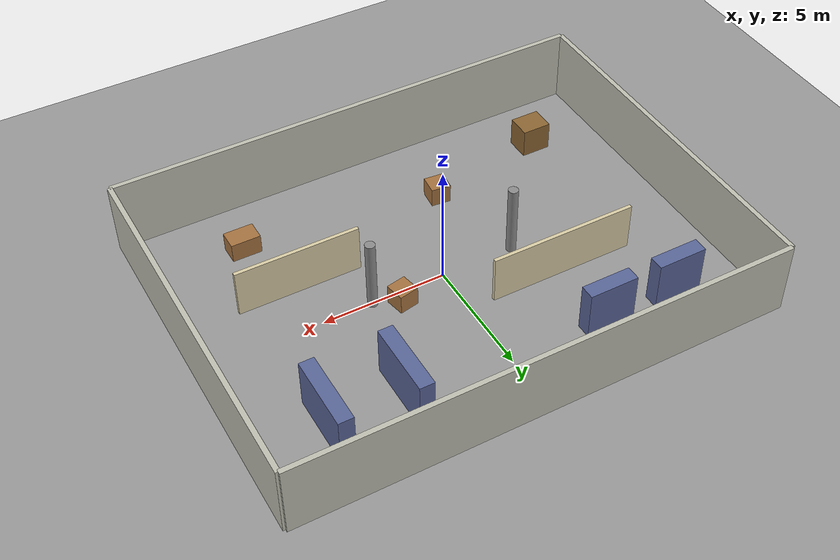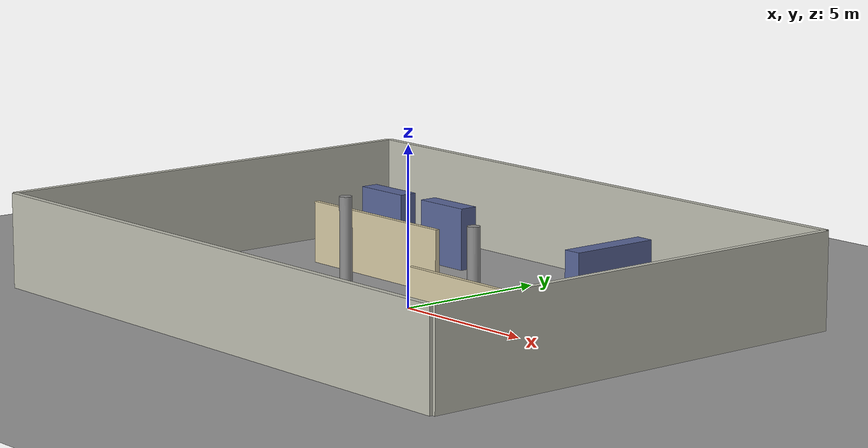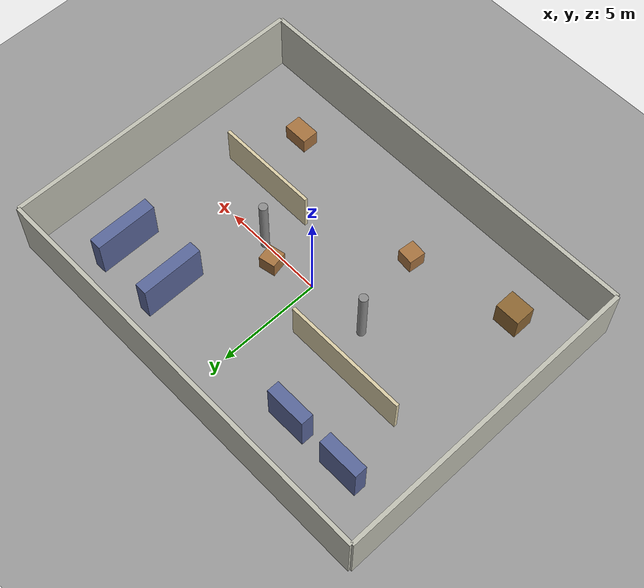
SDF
<?xml version="1.0" ?>
<sdf version="1.9">
  <world name="warehouse">

    <!-- ==================== Physics ==================== -->
    <physics name="1ms" type="dart">
      <max_step_size>0.001</max_step_size>
      <real_time_factor>1.0</real_time_factor>
    </physics>

    <!-- Required plugins -->
    <plugin filename="gz-sim-physics-system"
            name="gz::sim::systems::Physics"/>
    <plugin filename="gz-sim-scene-broadcaster-system"
            name="gz::sim::systems::SceneBroadcaster"/>
    <plugin filename="gz-sim-user-commands-system"
            name="gz::sim::systems::UserCommands"/>
    <plugin filename="gz-sim-sensors-system"
            name="gz::sim::systems::Sensors">
      <render_engine>ogre2</render_engine>
    </plugin>
    <plugin filename="gz-sim-imu-system"
            name="gz::sim::systems::Imu"/>
    <plugin filename="gz-sim-contact-system"
            name="gz::sim::systems::Contact"/>

    <!-- ==================== Lighting ==================== -->
    <light type="directional" name="sun">
      <cast_shadows>true</cast_shadows>
      <pose>0 0 10 0 0 0</pose>
      <diffuse>0.9 0.9 0.9 1</diffuse>
      <specular>0.3 0.3 0.3 1</specular>
      <direction>-0.5 0.1 -0.9</direction>
    </light>

    <light type="point" name="ceiling_light_1">
      <pose>0 0 4.5 0 0 0</pose>
      <diffuse>0.6 0.6 0.6 1</diffuse>
      <specular>0.1 0.1 0.1 1</specular>
      <attenuation>
        <range>20</range>
        <constant>0.5</constant>
        <linear>0.01</linear>
        <quadratic>0.001</quadratic>
      </attenuation>
    </light>

    <!-- ==================== Ground plane ==================== -->
    <model name="ground_plane">
      <static>true</static>
      <link name="link">
        <collision name="collision">
          <geometry>
            <plane>
              <normal>0 0 1</normal>
              <size>30 20</size>
            </plane>
          </geometry>
        </collision>
        <visual name="visual">
          <geometry>
            <plane>
              <normal>0 0 1</normal>
              <size>30 20</size>
            </plane>
          </geometry>
          <material>
            <ambient>0.55 0.55 0.55 1</ambient>
            <diffuse>0.6 0.6 0.6 1</diffuse>
          </material>
        </visual>
      </link>
    </model>

    <!-- ==================== Warehouse walls (20m x 15m, 3m tall) ==================== -->
    <!-- North wall -->
    <model name="wall_north">
      <static>true</static>
      <pose>0 7.5 1.5 0 0 0</pose>
      <link name="link">
        <collision name="collision">
          <geometry><box><size>20 0.2 3</size></box></geometry>
        </collision>
        <visual name="visual">
          <geometry><box><size>20 0.2 3</size></box></geometry>
          <material>
            <ambient>0.7 0.7 0.65 1</ambient>
            <diffuse>0.75 0.75 0.7 1</diffuse>
          </material>
        </visual>
      </link>
    </model>

    <!-- South wall -->
    <model name="wall_south">
      <static>true</static>
      <pose>0 -7.5 1.5 0 0 0</pose>
      <link name="link">
        <collision name="collision">
          <geometry><box><size>20 0.2 3</size></box></geometry>
        </collision>
        <visual name="visual">
          <geometry><box><size>20 0.2 3</size></box></geometry>
          <material>
            <ambient>0.7 0.7 0.65 1</ambient>
            <diffuse>0.75 0.75 0.7 1</diffuse>
          </material>
        </visual>
      </link>
    </model>

    <!-- East wall -->
    <model name="wall_east">
      <static>true</static>
      <pose>10 0 1.5 0 0 0</pose>
      <link name="link">
        <collision name="collision">
          <geometry><box><size>0.2 15 3</size></box></geometry>
        </collision>
        <visual name="visual">
          <geometry><box><size>0.2 15 3</size></box></geometry>
          <material>
            <ambient>0.7 0.7 0.65 1</ambient>
            <diffuse>0.75 0.75 0.7 1</diffuse>
          </material>
        </visual>
      </link>
    </model>

    <!-- West wall -->
    <model name="wall_west">
      <static>true</static>
      <pose>-10 0 1.5 0 0 0</pose>
      <link name="link">
        <collision name="collision">
          <geometry><box><size>0.2 15 3</size></box></geometry>
        </collision>
        <visual name="visual">
          <geometry><box><size>0.2 15 3</size></box></geometry>
          <material>
            <ambient>0.7 0.7 0.65 1</ambient>
            <diffuse>0.75 0.75 0.7 1</diffuse>
          </material>
        </visual>
      </link>
    </model>

    <!-- ==================== Internal partitions ==================== -->
    <!-- Partition 1: horizontal, left side -->
    <model name="partition_1">
      <static>true</static>
      <pose>-4 2 1 0 0 0</pose>
      <link name="link">
        <collision name="collision">
          <geometry><box><size>6 0.15 2</size></box></geometry>
        </collision>
        <visual name="visual">
          <geometry><box><size>6 0.15 2</size></box></geometry>
          <material>
            <ambient>0.8 0.75 0.6 1</ambient>
            <diffuse>0.85 0.8 0.65 1</diffuse>
          </material>
        </visual>
      </link>
    </model>

    <!-- Partition 2: horizontal, right side -->
    <model name="partition_2">
      <static>true</static>
      <pose>5 -2 1 0 0 0</pose>
      <link name="link">
        <collision name="collision">
          <geometry><box><size>5 0.15 2</size></box></geometry>
        </collision>
        <visual name="visual">
          <geometry><box><size>5 0.15 2</size></box></geometry>
          <material>
            <ambient>0.8 0.75 0.6 1</ambient>
            <diffuse>0.85 0.8 0.65 1</diffuse>
          </material>
        </visual>
      </link>
    </model>

    <!-- ==================== Shelving units (tall boxes) ==================== -->
    <!-- Shelf row A (left area) -->
    <model name="shelf_a1">
      <static>true</static>
      <pose>-7 5 1 0 0 0</pose>
      <link name="link">
        <collision name="collision">
          <geometry><box><size>2 0.6 2</size></box></geometry>
        </collision>
        <visual name="visual">
          <geometry><box><size>2 0.6 2</size></box></geometry>
          <material>
            <ambient>0.3 0.35 0.55 1</ambient>
            <diffuse>0.35 0.4 0.6 1</diffuse>
          </material>
        </visual>
      </link>
    </model>

    <model name="shelf_a2">
      <static>true</static>
      <pose>-4 5 1 0 0 0</pose>
      <link name="link">
        <collision name="collision">
          <geometry><box><size>2 0.6 2</size></box></geometry>
        </collision>
        <visual name="visual">
          <geometry><box><size>2 0.6 2</size></box></geometry>
          <material>
            <ambient>0.3 0.35 0.55 1</ambient>
            <diffuse>0.35 0.4 0.6 1</diffuse>
          </material>
        </visual>
      </link>
    </model>

    <!-- Shelf row B (right area) -->
    <model name="shelf_b1">
      <static>true</static>
      <pose>4 4.5 1 0 0 0</pose>
      <link name="link">
        <collision name="collision">
          <geometry><box><size>0.6 3 2</size></box></geometry>
        </collision>
        <visual name="visual">
          <geometry><box><size>0.6 3 2</size></box></geometry>
          <material>
            <ambient>0.3 0.35 0.55 1</ambient>
            <diffuse>0.35 0.4 0.6 1</diffuse>
          </material>
        </visual>
      </link>
    </model>

    <model name="shelf_b2">
      <static>true</static>
      <pose>7 4.5 1 0 0 0</pose>
      <link name="link">
        <collision name="collision">
          <geometry><box><size>0.6 3 2</size></box></geometry>
        </collision>
        <visual name="visual">
          <geometry><box><size>0.6 3 2</size></box></geometry>
          <material>
            <ambient>0.3 0.35 0.55 1</ambient>
            <diffuse>0.35 0.4 0.6 1</diffuse>
          </material>
        </visual>
      </link>
    </model>

    <!-- ==================== Pallets / crates (small obstacles) ==================== -->
    <model name="crate_1">
      <static>true</static>
      <pose>2 0.5 0.4 0 0 0.2</pose>
      <link name="link">
        <collision name="collision">
          <geometry><box><size>0.8 0.8 0.8</size></box></geometry>
        </collision>
        <visual name="visual">
          <geometry><box><size>0.8 0.8 0.8</size></box></geometry>
          <material>
            <ambient>0.6 0.4 0.2 1</ambient>
            <diffuse>0.65 0.45 0.25 1</diffuse>
          </material>
        </visual>
      </link>
    </model>

    <model name="crate_2">
      <static>true</static>
      <pose>-2 -4 0.4 0 0 -0.1</pose>
      <link name="link">
        <collision name="collision">
          <geometry><box><size>0.8 0.8 0.8</size></box></geometry>
        </collision>
        <visual name="visual">
          <geometry><box><size>0.8 0.8 0.8</size></box></geometry>
          <material>
            <ambient>0.6 0.4 0.2 1</ambient>
            <diffuse>0.65 0.45 0.25 1</diffuse>
          </material>
        </visual>
      </link>
    </model>

    <model name="crate_3">
      <static>true</static>
      <pose>6 -5 0.4 0 0 0</pose>
      <link name="link">
        <collision name="collision">
          <geometry><box><size>1.2 0.8 0.8</size></box></geometry>
        </collision>
        <visual name="visual">
          <geometry><box><size>1.2 0.8 0.8</size></box></geometry>
          <material>
            <ambient>0.6 0.4 0.2 1</ambient>
            <diffuse>0.65 0.45 0.25 1</diffuse>
          </material>
        </visual>
      </link>
    </model>

    <!-- Pallet stack (south-west area) -->
    <model name="pallet_stack">
      <static>true</static>
      <pose>-7 -5 0.6 0 0 0</pose>
      <link name="link">
        <collision name="collision">
          <geometry><box><size>1.2 1.0 1.2</size></box></geometry>
        </collision>
        <visual name="visual">
          <geometry><box><size>1.2 1.0 1.2</size></box></geometry>
          <material>
            <ambient>0.5 0.35 0.15 1</ambient>
            <diffuse>0.55 0.4 0.2 1</diffuse>
          </material>
        </visual>
      </link>
    </model>

    <!-- ==================== Pillars (structural columns) ==================== -->
    <model name="pillar_1">
      <static>true</static>
      <pose>-3 0 1.5 0 0 0</pose>
      <link name="link">
        <collision name="collision">
          <geometry><cylinder><radius>0.2</radius><length>3</length></cylinder></geometry>
        </collision>
        <visual name="visual">
          <geometry><cylinder><radius>0.2</radius><length>3</length></cylinder></geometry>
          <material>
            <ambient>0.5 0.5 0.5 1</ambient>
            <diffuse>0.55 0.55 0.55 1</diffuse>
          </material>
        </visual>
      </link>
    </model>

    <model name="pillar_2">
      <static>true</static>
      <pose>3 0 1.5 0 0 0</pose>
      <link name="link">
        <collision name="collision">
          <geometry><cylinder><radius>0.2</radius><length>3</length></cylinder></geometry>
        </collision>
        <visual name="visual">
          <geometry><cylinder><radius>0.2</radius><length>3</length></cylinder></geometry>
          <material>
            <ambient>0.5 0.5 0.5 1</ambient>
            <diffuse>0.55 0.55 0.55 1</diffuse>
          </material>
        </visual>
      </link>
    </model>

  </world>
</sdf>
